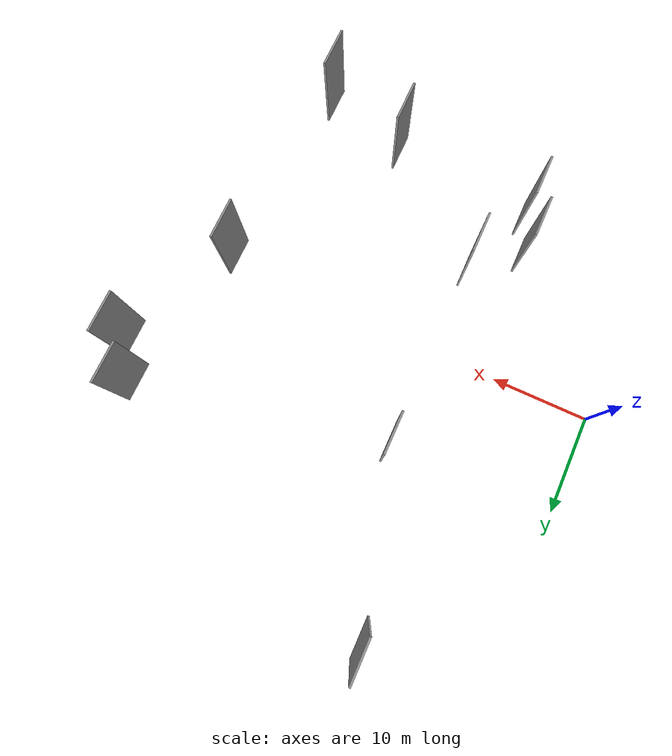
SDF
<sdf version="1.6">
 <world name="default">
  <scene>
   <sky><clouds><speed>12</speed></clouds></sky>
   <ambient>0.4 0.4 0.4 1</ambient>
   <background>0.7 0.7 0.7 1</background>
   <shadows>1</shadows>
  </scene>
  <gravity>0 0 -9.8066</gravity>
  <magnetic_field>6e-06 2.3e-05 -4.2e-05</magnetic_field>
  <physics default="0" name="default_physics" type="ode">
   <ode>
    <solver>
     <type>quick</type>
     <iters>10</iters>
     <sor>1.0</sor>
     <use_dynamic_moi_rescaling>0</use_dynamic_moi_rescaling>
    </solver>
    <constraints>
     <cfm>0</cfm>
     <erp>0.2</erp>
     <contact_max_correcting_vel>100</contact_max_correcting_vel>
     <contact_surface_layer>0.001</contact_surface_layer>
    </constraints>
   </ode>
   <max_step_size>0.004</max_step_size>
   <real_time_factor>1</real_time_factor>
   <real_time_update_rate>250</real_time_update_rate>
  </physics>
  <light name="sun" type="directional">
   <pose>0 0 10 0 0 0</pose>
   <diffuse>0.8 0.8 0.8 1</diffuse>
   <specular>0.2 0.2 0.2 1</specular>
   <attenuation>
    <range>1000</range>
    <constant>0.9</constant>
    <linear>0.01</linear>
    <quadratic>0.001</quadratic>
   </attenuation>
   <direction>-0.5 0.1 -0.9</direction>
  </light>
  <model name="grey_wall_1">
   <static>1</static>
   <pose>17.3701 10.6115 2.5 0.000000 0.000000 1.570796</pose>
   <link name="link">
    <pose>0 0 5.00 0 0 0</pose>
    <collision name="collision"><geometry><box><size>4.00 0.2 10.00</size></box></geometry></collision>
    <visual name="visual">
     <cast_shadows>0</cast_shadows>
     <geometry><box><size>4.00 0.2 10.00</size></box></geometry>
     <material>
      <script>
       <uri>model://grey_wall/materials/scripts</uri>
       <uri>model://grey_wall/materials/textures</uri>
       <name>vrc/grey_wall</name>
      </script>
     </material>
    </visual>
   </link>
  </model>
  <model name="grey_wall_2">
   <static>1</static>
   <pose>44.9294 11.5207 2.5 0.000000 0.000000 1.570796</pose>
   <link name="link">
    <pose>0 0 5.00 0 0 0</pose>
    <collision name="collision"><geometry><box><size>4.00 0.2 10.00</size></box></geometry></collision>
    <visual name="visual">
     <cast_shadows>0</cast_shadows>
     <geometry><box><size>4.00 0.2 10.00</size></box></geometry>
     <material>
      <script>
       <uri>model://grey_wall/materials/scripts</uri>
       <uri>model://grey_wall/materials/textures</uri>
       <name>vrc/grey_wall</name>
      </script>
     </material>
    </visual>
   </link>
  </model>
  <model name="grey_wall_3">
   <static>1</static>
   <pose>28.7559 -18.4069 2.5 0.000000 0.000000 1.570796</pose>
   <link name="link">
    <pose>0 0 5.00 0 0 0</pose>
    <collision name="collision"><geometry><box><size>4.00 0.2 10.00</size></box></geometry></collision>
    <visual name="visual">
     <cast_shadows>0</cast_shadows>
     <geometry><box><size>4.00 0.2 10.00</size></box></geometry>
     <material>
      <script>
       <uri>model://grey_wall/materials/scripts</uri>
       <uri>model://grey_wall/materials/textures</uri>
       <name>vrc/grey_wall</name>
      </script>
     </material>
    </visual>
   </link>
  </model>
  <model name="grey_wall_4">
   <static>1</static>
   <pose>39.2498 -0.5603 2.5 0.000000 0.000000 1.570796</pose>
   <link name="link">
    <pose>0 0 5.00 0 0 0</pose>
    <collision name="collision"><geometry><box><size>4.00 0.2 10.00</size></box></geometry></collision>
    <visual name="visual">
     <cast_shadows>0</cast_shadows>
     <geometry><box><size>4.00 0.2 10.00</size></box></geometry>
     <material>
      <script>
       <uri>model://grey_wall/materials/scripts</uri>
       <uri>model://grey_wall/materials/textures</uri>
       <name>vrc/grey_wall</name>
      </script>
     </material>
    </visual>
   </link>
  </model>
  <model name="grey_wall_5">
   <static>1</static>
   <pose>14.1629 -16.5747 2.5 0.000000 0.000000 1.570796</pose>
   <link name="link">
    <pose>0 0 5.00 0 0 0</pose>
    <collision name="collision"><geometry><box><size>4.00 0.2 10.00</size></box></geometry></collision>
    <visual name="visual">
     <cast_shadows>0</cast_shadows>
     <geometry><box><size>4.00 0.2 10.00</size></box></geometry>
     <material>
      <script>
       <uri>model://grey_wall/materials/scripts</uri>
       <uri>model://grey_wall/materials/textures</uri>
       <name>vrc/grey_wall</name>
      </script>
     </material>
    </visual>
   </link>
  </model>
  <model name="grey_wall_6">
   <static>1</static>
   <pose>42.4429 15.3482 2.5 0.000000 0.000000 1.570796</pose>
   <link name="link">
    <pose>0 0 5.00 0 0 0</pose>
    <collision name="collision"><geometry><box><size>4.00 0.2 10.00</size></box></geometry></collision>
    <visual name="visual">
     <cast_shadows>0</cast_shadows>
     <geometry><box><size>4.00 0.2 10.00</size></box></geometry>
     <material>
      <script>
       <uri>model://grey_wall/materials/scripts</uri>
       <uri>model://grey_wall/materials/textures</uri>
       <name>vrc/grey_wall</name>
      </script>
     </material>
    </visual>
   </link>
  </model>
  <model name="grey_wall_7">
   <static>1</static>
   <pose>37.4393 -20.7939 2.5 0.000000 0.000000 1.570796</pose>
   <link name="link">
    <pose>0 0 5.00 0 0 0</pose>
    <collision name="collision"><geometry><box><size>4.00 0.2 10.00</size></box></geometry></collision>
    <visual name="visual">
     <cast_shadows>0</cast_shadows>
     <geometry><box><size>4.00 0.2 10.00</size></box></geometry>
     <material>
      <script>
       <uri>model://grey_wall/materials/scripts</uri>
       <uri>model://grey_wall/materials/textures</uri>
       <name>vrc/grey_wall</name>
      </script>
     </material>
    </visual>
   </link>
  </model>
  <model name="grey_wall_8">
   <static>1</static>
   <pose>17.3363 -9.0102 2.5 0.000000 0.000000 1.570796</pose>
   <link name="link">
    <pose>0 0 5.00 0 0 0</pose>
    <collision name="collision"><geometry><box><size>4.00 0.2 10.00</size></box></geometry></collision>
    <visual name="visual">
     <cast_shadows>0</cast_shadows>
     <geometry><box><size>4.00 0.2 10.00</size></box></geometry>
     <material>
      <script>
       <uri>model://grey_wall/materials/scripts</uri>
       <uri>model://grey_wall/materials/textures</uri>
       <name>vrc/grey_wall</name>
      </script>
     </material>
    </visual>
   </link>
  </model>
  <model name="grey_wall_9">
   <static>1</static>
   <pose>12.7014 27.8088 2.5 0.000000 0.000000 1.570796</pose>
   <link name="link">
    <pose>0 0 5.00 0 0 0</pose>
    <collision name="collision"><geometry><box><size>4.00 0.2 10.00</size></box></geometry></collision>
    <visual name="visual">
     <cast_shadows>0</cast_shadows>
     <geometry><box><size>4.00 0.2 10.00</size></box></geometry>
     <material>
      <script>
       <uri>model://grey_wall/materials/scripts</uri>
       <uri>model://grey_wall/materials/textures</uri>
       <name>vrc/grey_wall</name>
      </script>
     </material>
    </visual>
   </link>
  </model>
  <model name="grey_wall_10">
   <static>1</static>
   <pose>12.7878 -12.7564 2.5 0.000000 0.000000 1.570796</pose>
   <link name="link">
    <pose>0 0 5.00 0 0 0</pose>
    <collision name="collision"><geometry><box><size>4.00 0.2 10.00</size></box></geometry></collision>
    <visual name="visual">
     <cast_shadows>0</cast_shadows>
     <geometry><box><size>4.00 0.2 10.00</size></box></geometry>
     <material>
      <script>
       <uri>model://grey_wall/materials/scripts</uri>
       <uri>model://grey_wall/materials/textures</uri>
       <name>vrc/grey_wall</name>
      </script>
     </material>
    </visual>
   </link>
  </model>
 </world>
</sdf>
